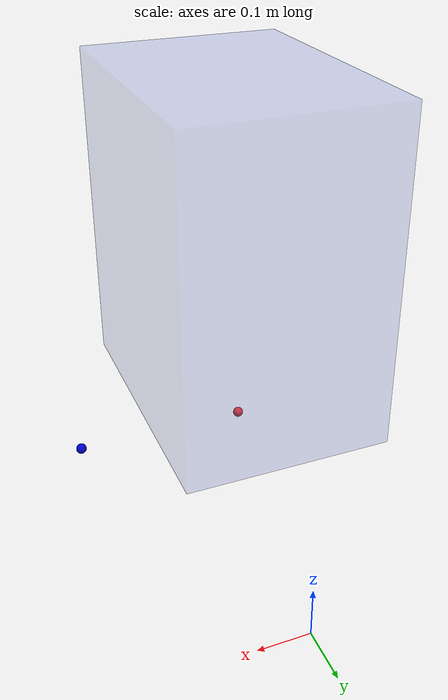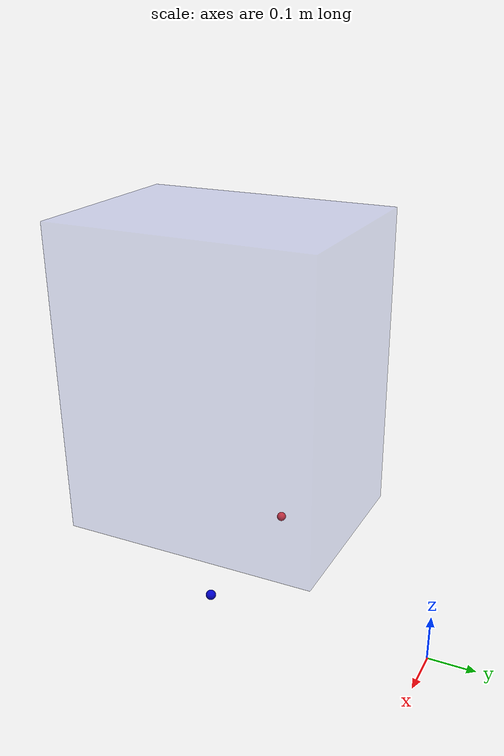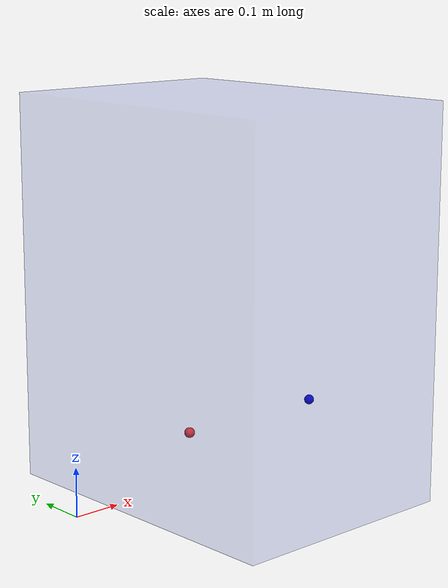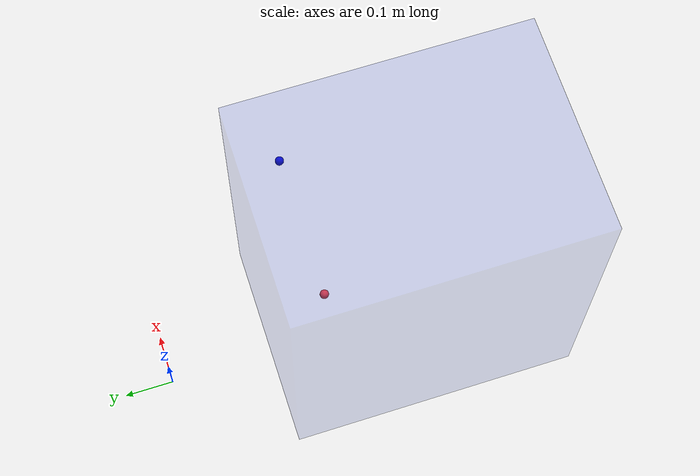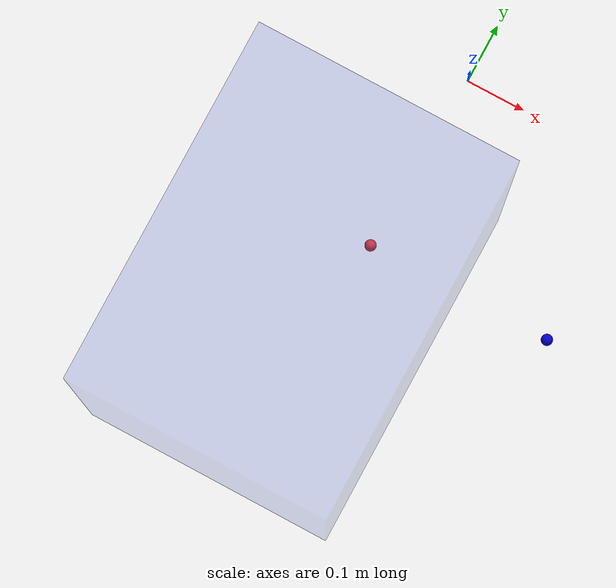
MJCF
<mujoco>
    <worldbody>
        <!--Target-->
        <body name="pick" pos="0 -.33 0.25" quat="0 1 0 0">
            <geom conaffinity="0" contype="0" name="pick" pos="0 0 0" rgba="0.9 0.2 0.2 1" size=".009" type="sphere"/>
        </body>
        <body name="place" pos=".3 -.33 0.25" quat="0 1 0 0">
            <geom conaffinity="0" contype="0" name="place" pos="0 0 0" rgba="0 0 0.8 1" size=".009" type="sphere"/>
        </body>
        <body name="target_allowance" pos="0 -0.33 0.25">
            <geom conaffinity="0" contype="0" name="target_allowance" type="box" size="0.05 0.05 0.05" rgba="0.9 0.2 0.2 0.2" />
        </body>
        <body name="virtual_wall" pos="-0.05 -0.475 0.525">
            <geom conaffinity="0" contype="0" name="virtual_wall" type="box" size="0.20 0.275 0.325" rgba="0.146 0.240 0.73 0.1" />
        </body>
    </worldbody>
</mujoco>
